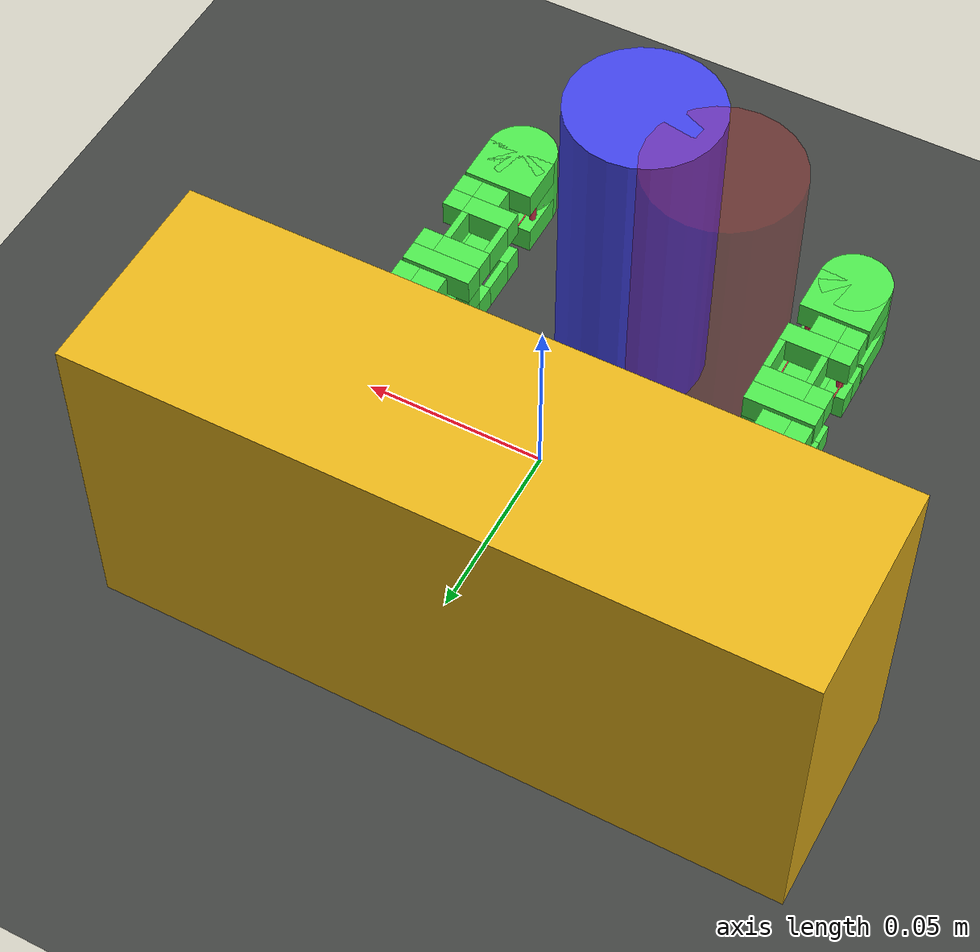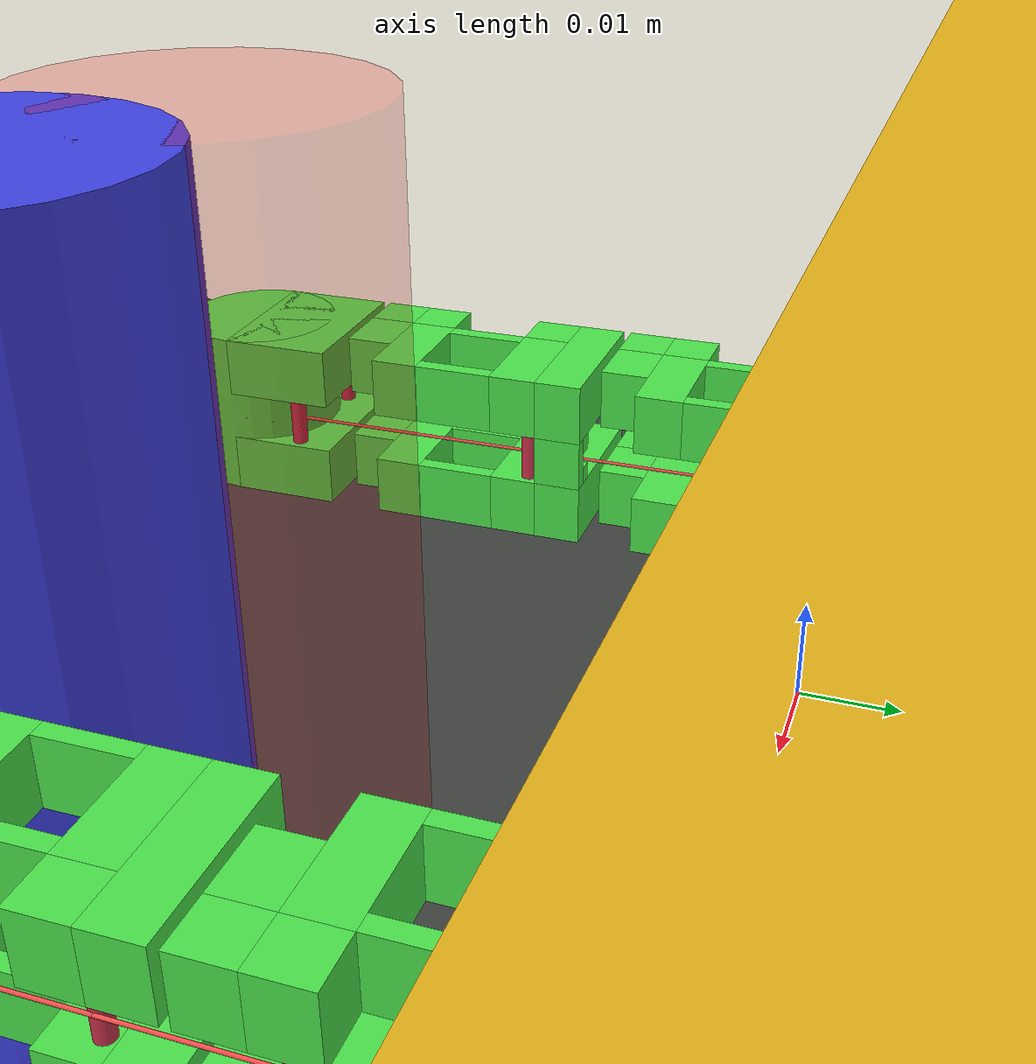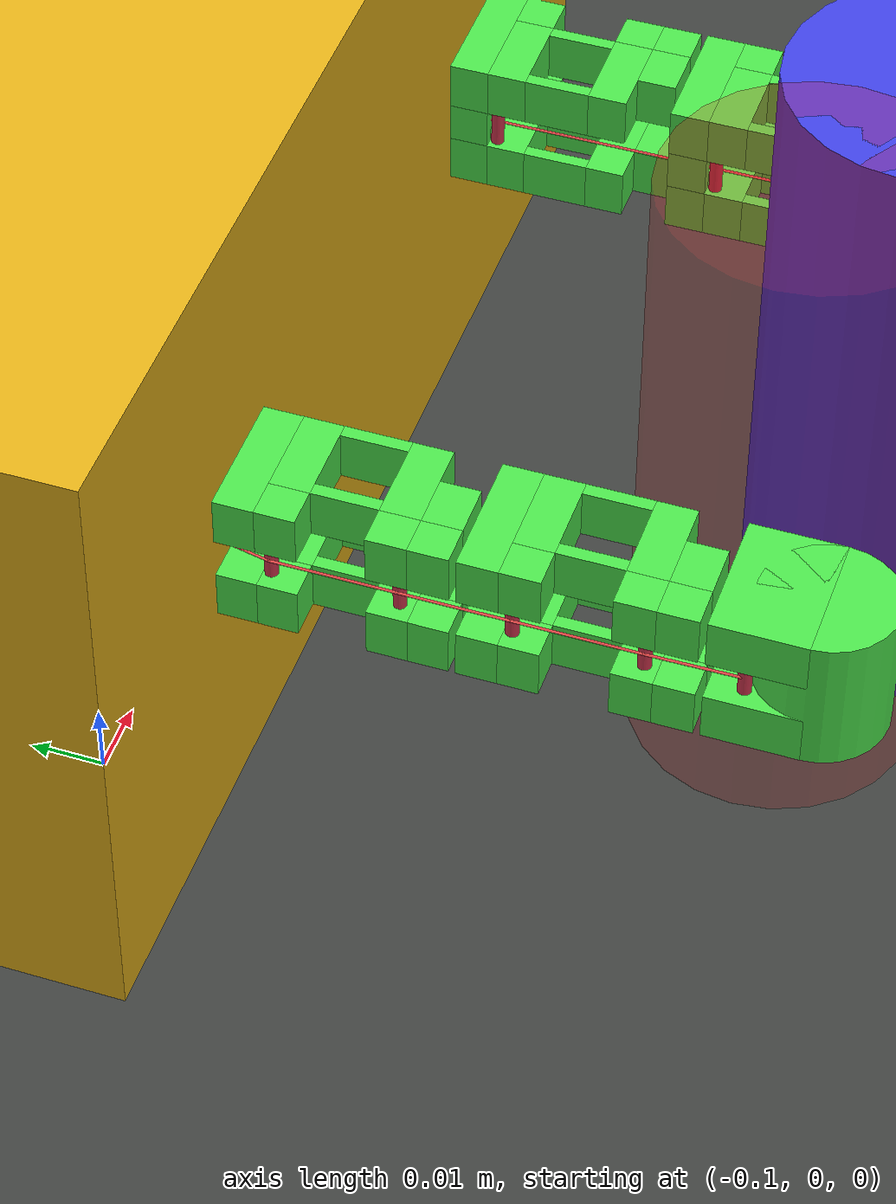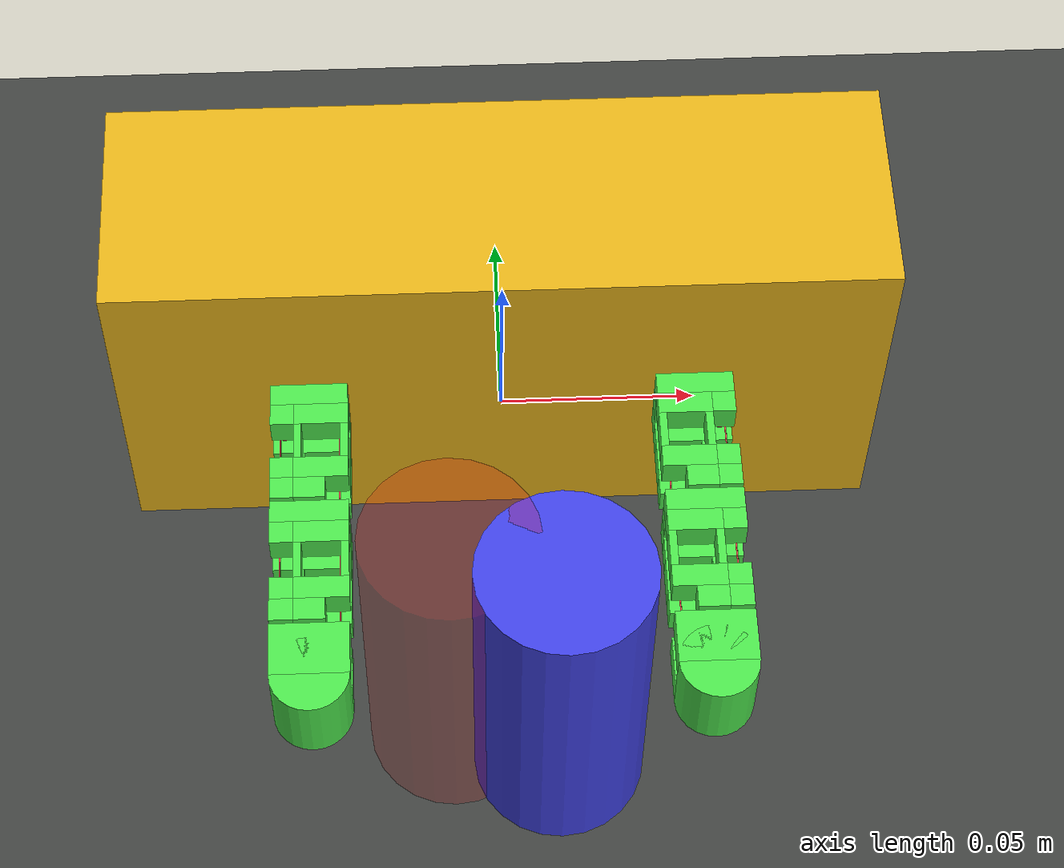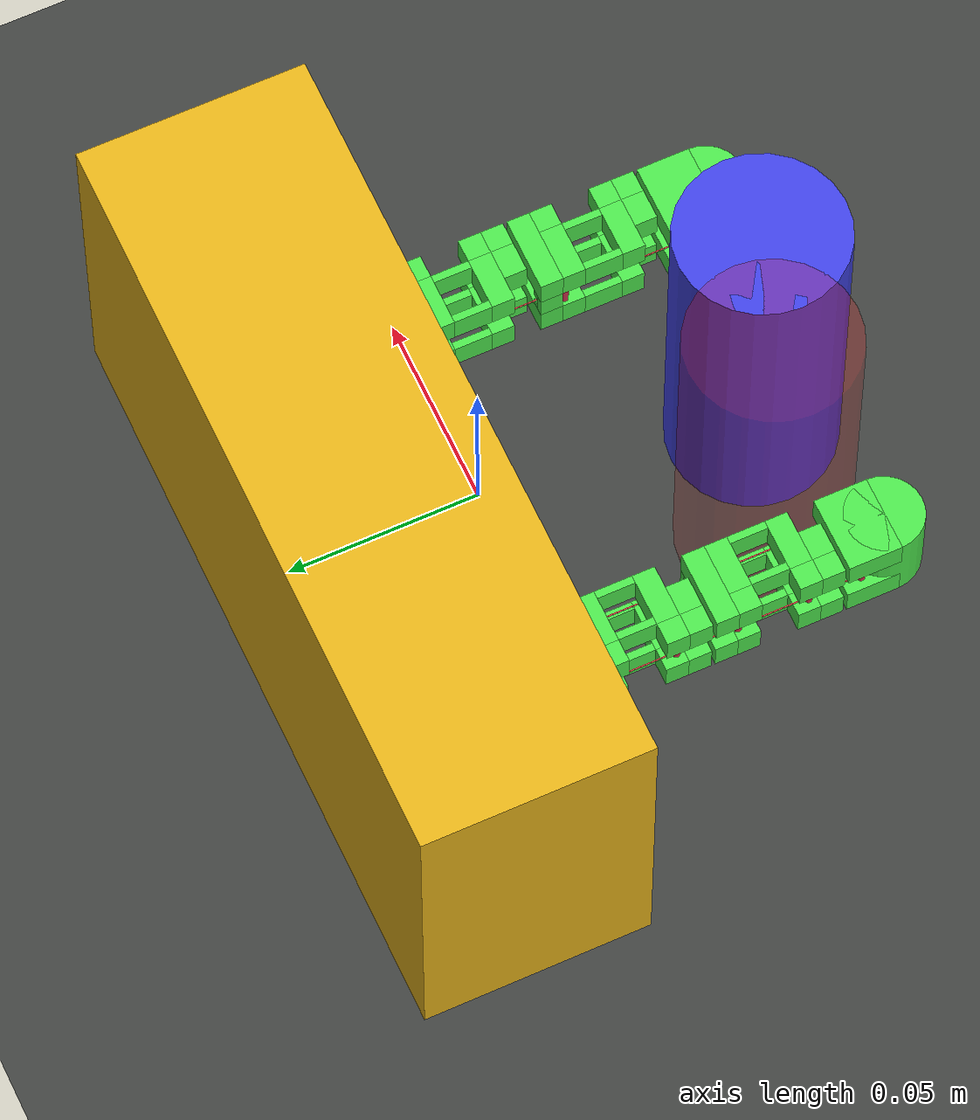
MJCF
<mujoco model="essim">

    <compiler inertiafromgeom="true" coordinate="local" angle="degree"/>
    <default>
        <site type="sphere" rgba=".9 .9 .9 1" size="0.0001"/>
        <geom rgba=".9 .7 .1 1" size="0.01" friction="1 0.005 0.001" margin="0.0005" condim="6" solref=".01 1" solimp=".99 .99 .01"/>
        <joint limited="true" damping="0.05" armature=".001" margin="0.01" frictionloss="0.001"/>
    </default>
    <option timestep="0.01"/>
    <size njmax="1500" nconmax="500" nstack="5000000"/>

    <worldbody>

      <light directional="true" cutoff="4" exponent="20" diffuse="1 1 1" specular="0 0 0" pos="0 0 0" dir="-.5 -.3 -2.5 "/>
      <geom name="ground" type="plane" pos="0 0 -0.050" size="1 1 1" rgba=" .25 .26 .25 1"/>

      <site name="left_spool_origin" pos="-0.042 0.0072 0"/>
      <site name="right_spool_origin" pos="-0.055 0.0072 0"/>

      <site name="l_right_spool_origin" pos="0.055 0.0072 0"/>
      <site name="l_left_spool_origin" pos="0.042 0.0072 0"/>
      <body pos="0 0.030 0" >
        <geom type="box" size="0.10 0.03 0.05"/>
      </body>

      <!-- ======= Object to be manipulated ======= -->
      <body name="item" pos="0.012 -0.08 0" >
        <geom type="cylinder" size="0.022 0.05" mass="0.050" rgba=" .25 .26 .9 1"  margin="0.0005" />
        <joint type="free" damping="0" armature="0" limited="false"/>
      </body>

      <body name="reference" pos="-0.015 -0.07 0" >

        <geom type="cylinder" size="0.022 0.05" rgba=" 1 0 0 0.2" conaffinity="0" contype="0"/>

      </body>

      <!-- ======= Right Finger ======= -->
      <body pos="-0.050 0 0" >
        <geom type="box"  pos="0 -0.0030 0.007025 " size="0.01 0.003 0.003825" rgba=".3 .9 .3 1"/>
        <geom type="box"  pos="0.003 -0.009 0.007025  " size="0.007 0.003 0.003825" rgba=".3 .9 .3 1"/>
        <geom type="box"  pos="0.003 -0.025 0.007025  " size="0.007 0.003 0.003825" rgba=".3 .9 .3 1"/>

        <geom type="box"  pos="0 -0.031 0.007025  " size="0.004 0.003 0.003825" rgba=".3 .9 .3 1"/>
        <geom type="box"  pos="-0.007 -0.031 0.007025  " size="0.003 0.003 0.003825" rgba=".3 .9 .3 1"/>
        <geom type="box"  pos="-0.007 -0.025 0.007025  " size="0.003 0.003 0.003825" rgba=".3 .9 .3 1"/>

        <geom type="box"  pos="0.009 -0.017 0.007025  " size="0.001 0.005 0.003825" rgba=".3 .9 .3 1"/>
        <geom type="box"  pos="-0.003 -0.017 0.007025  " size="0.001 0.005 0.003825" rgba=".3 .9 .3 1"/>

        <geom type="box"  pos="0 -0.0030 -0.007025" size="0.01 0.003 0.003825" rgba=".3 .9 .3 1"/>
        <geom type="box"  pos="0.003 -0.009 -0.007025 " size="0.007 0.003 0.003825" rgba=".3 .9 .3 1"/>
        <geom type="box"  pos="0.003 -0.025 -0.007025 " size="0.007 0.003 0.003825" rgba=".3 .9 .3 1"/>

        <geom type="box"  pos="0 -0.031 -0.007025  " size="0.004 0.003 0.003825" rgba=".3 .9 .3 1"/>
        <geom type="box"  pos="-0.007 -0.031 -0.007025  " size="0.003 0.003 0.003825" rgba=".3 .9 .3 1"/>
        <geom type="box"  pos="-0.007 -0.025 -0.007025  " size="0.003 0.003 0.003825" rgba=".3 .9 .3 1"/>

        <geom type="box"  pos="-0.007 -0.0090 -0.007025 " size="0.003 0.003 0.003825" rgba=".3 .9 .3 1"/>
        <geom type="box"  pos="-0.007 -0.0090 0.007025  " size="0.003 0.003 0.003825" rgba=".3 .9 .3 1"/>

        <geom type="box"  pos="0.009 -0.017 -0.007025 " size="0.001 0.005 0.003825" rgba=".3 .9 .3 1"/>
        <geom type="box"  pos="-0.003 -0.017 -0.007025 " size="0.001 0.005 0.003825" rgba=".3 .9 .3 1"/>

        <geom type="box"  pos="0.0091 -0.0030 0 " size="0.0009 0.003 0.0032" rgba=".3 .9 .3 1"/>
        <geom type="box"  pos="0.0072 -0.0030 0.0021 " size="0.001 0.003 0.0011" rgba=".3 .9 .3 1"/>
        <geom type="box"  pos="0.0072 -0.0030 -0.0021 " size="0.001 0.003 0.0011" rgba=".3 .9 .3 1"/>

          <!-- ======= Tendon spool ======= -->
        <geom name ="spool_left_1" type="cylinder"  pos="0.0082 -0.0072 0 " size="0.001 0.0032 " rgba=".8 .2 .3 1"/>
        <site name="l_s1" pos="0.0074 -0.0072 0 " />

        <geom name ="spool_right_1" type="cylinder"  pos="-0.007 -0.0072 0  " size="0.001 0.0032 " rgba=".8 .2 .3 1"/>
        <geom name ="spool_right_2" type="cylinder"  pos="-0.007 -0.026 0" size="0.001 0.0032 " rgba=".8 .2 .3 1"/>
        <site name="r_s1" pos="-0.0080 -0.0072 0 " />
        <site name="r_s2" pos="-0.0080 -0.026 0 " />

        <body pos="0 -0.035 0" euler="0 0 0">

          <geom type="box"  pos="0 -0.0030 0.007025 " size="0.01 0.003 0.003825" rgba=".3 .9 .3 1"/>
          <geom type="box"  pos="0.003 -0.009 0.007025  " size="0.007 0.003 0.003825" rgba=".3 .9 .3 1"/>
          <geom type="box"  pos="0.003 -0.025 0.007025  " size="0.007 0.003 0.003825" rgba=".3 .9 .3 1"/>

          <geom type="box"  pos="0 -0.031 0.007025  " size="0.004 0.003 0.003825" rgba=".3 .9 .3 1"/>
          <geom type="box"  pos="-0.007 -0.031 0.007025  " size="0.003 0.003 0.003825" rgba=".3 .9 .3 1"/>
          <geom type="box"  pos="-0.007 -0.025 0.007025  " size="0.003 0.003 0.003825" rgba=".3 .9 .3 1"/>

          <geom type="box"  pos="0.009 -0.017 0.007025  " size="0.001 0.005 0.003825" rgba=".3 .9 .3 1"/>
          <geom type="box"  pos="-0.003 -0.017 0.007025  " size="0.001 0.005 0.003825" rgba=".3 .9 .3 1"/>

          <geom type="box"  pos="0 -0.0030 -0.007025" size="0.01 0.003 0.003825" rgba=".3 .9 .3 1"/>
          <geom type="box"  pos="0.003 -0.009 -0.007025 " size="0.007 0.003 0.003825" rgba=".3 .9 .3 1"/>
          <geom type="box"  pos="0.003 -0.025 -0.007025 " size="0.007 0.003 0.003825" rgba=".3 .9 .3 1"/>

          <geom type="box"  pos="0 -0.031 -0.007025  " size="0.004 0.003 0.003825" rgba=".3 .9 .3 1"/>
          <geom type="box"  pos="-0.007 -0.031 -0.007025  " size="0.003 0.003 0.003825" rgba=".3 .9 .3 1"/>
          <geom type="box"  pos="-0.007 -0.025 -0.007025  " size="0.003 0.003 0.003825" rgba=".3 .9 .3 1"/>

          <geom type="box"  pos="-0.007 -0.0090 -0.007025 " size="0.003 0.003 0.003825" rgba=".3 .9 .3 1"/>
          <geom type="box"  pos="-0.007 -0.0090 0.007025  " size="0.003 0.003 0.003825" rgba=".3 .9 .3 1"/>

          <geom type="box"  pos="0.009 -0.017 -0.007025 " size="0.001 0.005 0.003825" rgba=".3 .9 .3 1"/>
          <geom type="box"  pos="-0.003 -0.017 -0.007025 " size="0.001 0.005 0.003825" rgba=".3 .9 .3 1"/>

          <geom type="box"  pos="0.0091 -0.0030 0 " size="0.0009 0.003 0.0032" rgba=".3 .9 .3 1"/>
          <geom type="box"  pos="0.0072 -0.0030 0.0021 " size="0.001 0.003 0.0011" rgba=".3 .9 .3 1"/>
          <geom type="box"  pos="0.0072 -0.0030 -0.0021 " size="0.001 0.003 0.0011" rgba=".3 .9 .3 1"/>

            <!-- ======= Tendon spool ======= -->
          <geom name ="spool_left_2" type="cylinder"  pos="0.0082 -0.0072 0 " size="0.001 0.0032 " rgba=".8 .2 .3 1"/>
          <site name="l_s2" pos="0.0074 -0.0072 0 " />
          <geom name ="spool_right_3" type="cylinder"  pos="-0.007 -0.0072 0  " size="0.001 0.0032 " rgba=".8 .2 .3 1"/>
          <geom name ="spool_right_4" type="cylinder"  pos="-0.007 -0.026 0" size="0.001 0.0032 " rgba=".8 .2 .3 1"/>
          <site name="r_s3" pos="-0.0080 -0.0072 0 " />
          <site name="r_s4" pos="-0.0080 -0.026 0 " />

          <joint type="hinge" name= "r_joint1" pos="0.003 0.0175 0" axis="0 0 1" limited="true" range="0 90" />
          <!-- ======= bearing and connection link for visualization ======= -->

          <body pos="0 -0.035 0">

            <geom type="box"  pos="0 -0.0070 0.007025 " size="0.01 0.007 0.003825" rgba=".3 .9 .3 1"/>
            <geom type="box"  pos="0 -0.0070 -0.007025 " size="0.01 0.007 0.003825" rgba=".3 .9 .3 1"/>
            <geom type="cylinder"  pos="0 -0.0140 0 "  size="0.010 0.01085" rgba=".3 .9 .3 1"/>

            <site name="sensor4" pos="0.010 -0.0120 0" euler="0 90 0" />
            <site name="sensor5" pos="0.010 -0.0080 0" euler="0 90 0" />
            <site name="sensor6" pos="0.010 -0.0040 0" euler="0 90 0" />

              <!-- ======= Tendon spool ======= -->
            <geom name ="spool_left_3" type="cylinder"  pos="0.0082 -0.0050 0 " size="0.001 0.0032 " rgba=".8 .2 .3 1"/>
            <site name="l_s3" pos="0.0074 -0.0050 0 " />
            <geom type="cylinder"  pos="-0.0070 -0.0050 0  " size="0.001 0.0032 " rgba=".8 .2 .3 1"/>

            <geom name ="spool_right_5" type="cylinder"  pos="-0.007 -0.0050 0" size="0.001 0.0032 " rgba=".8 .2 .3 1"/>
            <site name="r_s5" pos="-0.0078 -0.0050 0" />

            <joint type="hinge" name= "r_joint2" pos="0.003 0.0175 0" axis="0 0 1" limited="true" range="0 90" />

            </body>

        </body>
</body>

<!-- ======= Left Finger ======= -->
<body pos="0.050 0 0" euler="0 180 0" >
  <geom type="box"  pos="0 -0.0030 0.007025 " size="0.01 0.003 0.003825" rgba=".3 .9 .3 1"/>
  <geom type="box"  pos="0.003 -0.009 0.007025  " size="0.007 0.003 0.003825" rgba=".3 .9 .3 1"/>
  <geom type="box"  pos="0.003 -0.025 0.007025  " size="0.007 0.003 0.003825" rgba=".3 .9 .3 1"/>

  <geom type="box"  pos="0 -0.031 0.007025  " size="0.004 0.003 0.003825" rgba=".3 .9 .3 1"/>
  <geom type="box"  pos="-0.007 -0.031 0.007025  " size="0.003 0.003 0.003825" rgba=".3 .9 .3 1"/>
  <geom type="box"  pos="-0.007 -0.025 0.007025  " size="0.003 0.003 0.003825" rgba=".3 .9 .3 1"/>

  <geom type="box"  pos="0.009 -0.017 0.007025  " size="0.001 0.005 0.003825" rgba=".3 .9 .3 1"/>
  <geom type="box"  pos="-0.003 -0.017 0.007025  " size="0.001 0.005 0.003825" rgba=".3 .9 .3 1"/>

  <geom type="box"  pos="0 -0.0030 -0.007025" size="0.01 0.003 0.003825" rgba=".3 .9 .3 1"/>
  <geom type="box"  pos="0.003 -0.009 -0.007025 " size="0.007 0.003 0.003825" rgba=".3 .9 .3 1"/>
  <geom type="box"  pos="0.003 -0.025 -0.007025 " size="0.007 0.003 0.003825" rgba=".3 .9 .3 1"/>

  <geom type="box"  pos="0 -0.031 -0.007025  " size="0.004 0.003 0.003825" rgba=".3 .9 .3 1"/>
  <geom type="box"  pos="-0.007 -0.031 -0.007025  " size="0.003 0.003 0.003825" rgba=".3 .9 .3 1"/>
  <geom type="box"  pos="-0.007 -0.025 -0.007025  " size="0.003 0.003 0.003825" rgba=".3 .9 .3 1"/>

  <geom type="box"  pos="-0.007 -0.0090 -0.007025 " size="0.003 0.003 0.003825" rgba=".3 .9 .3 1"/>
  <geom type="box"  pos="-0.007 -0.0090 0.007025  " size="0.003 0.003 0.003825" rgba=".3 .9 .3 1"/>

  <geom type="box"  pos="0.009 -0.017 -0.007025 " size="0.001 0.005 0.003825" rgba=".3 .9 .3 1"/>
  <geom type="box"  pos="-0.003 -0.017 -0.007025 " size="0.001 0.005 0.003825" rgba=".3 .9 .3 1"/>

  <geom type="box"  pos="0.0091 -0.0030 0 " size="0.0009 0.003 0.0032" rgba=".3 .9 .3 1"/>
  <geom type="box"  pos="0.0072 -0.0030 0.0021 " size="0.001 0.003 0.0011" rgba=".3 .9 .3 1"/>
  <geom type="box"  pos="0.0072 -0.0030 -0.0021 " size="0.001 0.003 0.0011" rgba=".3 .9 .3 1"/>

    <!-- ======= Tendon spool ======= -->
  <geom name ="l_spool_left_1" type="cylinder"  pos="0.0082 -0.0072 0 " size="0.001 0.0032 " rgba=".8 .2 .3 1"/>
  <site name="l_l_s1" pos="0.0074 -0.0072 0 " />

  <geom name ="l_spool_right_1" type="cylinder"  pos="-0.007 -0.0072 0  " size="0.001 0.0032 " rgba=".8 .2 .3 1"/>
  <geom name ="l_spool_right_2" type="cylinder"  pos="-0.007 -0.026 0" size="0.001 0.0032 " rgba=".8 .2 .3 1"/>
  <site name="l_r_s1" pos="-0.0080 -0.0072 0 " />
  <site name="l_r_s2" pos="-0.0080 -0.026 0 " />

  <body pos="0 -0.0350 0">

    <geom type="box"  pos="0 -0.0030 0.007025 " size="0.01 0.003 0.003825" rgba=".3 .9 .3 1"/>
    <geom type="box"  pos="0.003 -0.009 0.007025  " size="0.007 0.003 0.003825" rgba=".3 .9 .3 1"/>
    <geom type="box"  pos="0.003 -0.025 0.007025  " size="0.007 0.003 0.003825" rgba=".3 .9 .3 1"/>

    <geom type="box"  pos="0 -0.031 0.007025  " size="0.004 0.003 0.003825" rgba=".3 .9 .3 1"/>
    <geom type="box"  pos="-0.007 -0.031 0.007025  " size="0.003 0.003 0.003825" rgba=".3 .9 .3 1"/>
    <geom type="box"  pos="-0.007 -0.025 0.007025  " size="0.003 0.003 0.003825" rgba=".3 .9 .3 1"/>

    <geom type="box"  pos="0.009 -0.017 0.007025  " size="0.001 0.005 0.003825" rgba=".3 .9 .3 1"/>
    <geom type="box"  pos="-0.003 -0.017 0.007025  " size="0.001 0.005 0.003825" rgba=".3 .9 .3 1"/>

    <geom type="box"  pos="0 -0.0030 -0.007025" size="0.01 0.003 0.003825" rgba=".3 .9 .3 1"/>
    <geom type="box"  pos="0.003 -0.009 -0.007025 " size="0.007 0.003 0.003825" rgba=".3 .9 .3 1"/>
    <geom type="box"  pos="0.003 -0.025 -0.007025 " size="0.007 0.003 0.003825" rgba=".3 .9 .3 1"/>

    <geom type="box"  pos="0 -0.031 -0.007025  " size="0.004 0.003 0.003825" rgba=".3 .9 .3 1"/>
    <geom type="box"  pos="-0.007 -0.031 -0.007025  " size="0.003 0.003 0.003825" rgba=".3 .9 .3 1"/>
    <geom type="box"  pos="-0.007 -0.025 -0.007025  " size="0.003 0.003 0.003825" rgba=".3 .9 .3 1"/>

    <geom type="box"  pos="-0.007 -0.0090 -0.007025 " size="0.003 0.003 0.003825" rgba=".3 .9 .3 1"/>
    <geom type="box"  pos="-0.007 -0.0090 0.007025  " size="0.003 0.003 0.003825" rgba=".3 .9 .3 1"/>

    <geom type="box"  pos="0.009 -0.017 -0.007025 " size="0.001 0.005 0.003825" rgba=".3 .9 .3 1"/>
    <geom type="box"  pos="-0.003 -0.017 -0.007025 " size="0.001 0.005 0.003825" rgba=".3 .9 .3 1"/>

    <geom type="box"  pos="0.0091 -0.0030 0 " size="0.0009 0.003 0.0032" rgba=".3 .9 .3 1"/>
    <geom type="box"  pos="0.0072 -0.0030 0.0021 " size="0.001 0.003 0.0011" rgba=".3 .9 .3 1"/>
    <geom type="box"  pos="0.0072 -0.0030 -0.0021 " size="0.001 0.003 0.0011" rgba=".3 .9 .3 1"/>

      <!-- ======= Tendon spool ======= -->
    <geom name ="l_spool_left_2" type="cylinder"  pos="0.0082 -0.0072 0 " size="0.001 0.0032 " rgba=".8 .2 .3 1"/>
    <site name="l_l_s2" pos="0.0074 -0.0072 0 " />
    <geom name ="l_spool_right_3" type="cylinder"  pos="-0.007 -0.0072 0  " size="0.001 0.0032 " rgba=".8 .2 .3 1"/>
    <geom name ="l_spool_right_4" type="cylinder"  pos="-0.007 -0.026 0" size="0.001 0.0032 " rgba=".8 .2 .3 1"/>
    <site name="l_r_s3" pos="-0.0080 -0.0072 0 " />
    <site name="l_r_s4" pos="-0.0080 -0.026 0 " />

    <joint type="hinge" name= "l_r_joint1" pos="0.003 0.0175 0" axis="0 0 1" limited="true" range="0 90" />
    <!-- ======= bearing and connection link for visualization ======= -->

    <body pos="0 -0.035 0">

      <geom type="box"  pos="0 -0.0070 0.007025 " size="0.01 0.007 0.003825" rgba=".3 .9 .3 1"/>
      <geom type="box"  pos="0 -0.0070 -0.007025 " size="0.01 0.007 0.003825" rgba=".3 .9 .3 1"/>
      <geom type="cylinder"  pos="0 -0.0140 0 "  size="0.010 0.01085" rgba=".3 .9 .3 1"/>

      <body name="sensor1_pos"  pos="0.010 -0.0120 0" euler="0 90 0" >

      </body>
      <site name="sensor1" pos="0.010 -0.0120 0" euler="0 90 0" />
      <site name="sensor2" pos="0.010 -0.0080 0" euler="0 90 0" />
      <site name="sensor3" pos="0.010 -0.0040 0" euler="0 90 0" />

        <!-- ======= Tendon spool ======= -->
      <geom name ="l_spool_left_3" type="cylinder"  pos="0.0082 -0.0050 0 " size="0.001 0.0032 " rgba=".8 .2 .3 1"/>
      <site name="l_l_s3" pos="0.0074 -0.0050 0 " />
      <geom type="cylinder"  pos="-0.0070 -0.0050 0  " size="0.001 0.0032 " rgba=".8 .2 .3 1"/>

      <geom name ="l_spool_right_5" type="cylinder"  pos="-0.007 -0.0050 0" size="0.001 0.0032 " rgba=".8 .2 .3 1"/>
      <site name="l_r_s5" pos="-0.0078 -0.0050 0" />

      <joint type="hinge"  name= "l_r_joint2" pos="0.003 0.0175 0" axis="0 0 1" limited="true" range="0 90"  />

      </body>

  </body>
</body>

</worldbody>

<tendon>
        <spatial name="tendon1" width="0.0002" rgba=".95 .3 .3 1" >
              <site site="left_spool_origin"/>
              <geom geom="spool_left_1" sidesite="l_s1"/>
              <site site="l_s1"/>
              <geom geom="spool_left_2" sidesite="l_s2"/>
              <site site="l_s2"/>
              <site site="l_s3"/>
          </spatial>

          <spatial name="tendon2" width="0.0002" rgba=".95 .3 .3 1" >
                <site site="right_spool_origin"/>
                <geom geom="spool_right_1" sidesite="r_s1"/>
                <site site="r_s1"/>
                <geom geom="spool_right_2" sidesite="r_s2"/>
                <site site="r_s2"/>
                <geom geom="spool_right_3" sidesite="r_s3"/>
                <site site="r_s3"/>
                <geom geom="spool_right_4" sidesite="r_s4"/>
                <site site="r_s4"/>
                <site site="r_s5"/>
            </spatial>

            <spatial name="l_tendon1" width="0.0002" rgba=".95 .3 .3 1" >
                  <site site="l_left_spool_origin"/>
                  <geom geom="l_spool_left_1" sidesite="l_l_s1"/>
                  <site site="l_l_s1"/>
                  <geom geom="l_spool_left_2" sidesite="l_l_s2"/>
                  <site site="l_l_s2"/>
                  <site site="l_l_s3"/>
              </spatial>

              <spatial name="l_tendon2" width="0.0002" rgba=".95 .3 .3 1" >
                    <site site="l_right_spool_origin"/>
                    <geom geom="l_spool_right_1" sidesite="l_r_s1"/>
                    <site site="l_r_s1"/>
                    <geom geom="l_spool_right_2" sidesite="l_r_s2"/>
                    <site site="l_r_s2"/>
                    <geom geom="l_spool_right_3" sidesite="l_r_s3"/>
                    <site site="l_r_s3"/>
                    <geom geom="l_spool_right_4" sidesite="l_r_s4"/>
                    <site site="l_r_s4"/>
                    <site site="l_r_s5"/>
                </spatial>

      </tendon>

      <actuator>
        <motor name="Right" tendon="tendon1" ctrllimited="true" ctrlrange="-1 0" gear="8"/>
        <motor name="Right2" tendon="tendon2" ctrllimited="true" ctrlrange="-1 0" gear="8"/>
        <motor name="Left" tendon="l_tendon1" ctrllimited="true" ctrlrange="-1 0" gear="8"/>
        <motor name="left2" tendon="l_tendon2" ctrllimited="true" ctrlrange="-1 0" gear="8"/>

      </actuator>

      <sensor>
        <rangefinder name="Left" site="sensor1" />
        <rangefinder name="Left2" site="sensor2" />
        <rangefinder name="Left3" site="sensor3" />
        <rangefinder name="Right" site="sensor4" />
        <rangefinder name="Right1" site="sensor5" />
        <rangefinder name="Right3" site="sensor6" />

      </sensor>

      <keyframe>

        <key time="0" qpos='0.012566 -0.0605091 -7.64849e-05 0.999888 -0.000885256 -0.000537436 -0.0149548 0.39768 0.288012 0.0905712 0.102736'/>

      </keyframe>

</mujoco>
